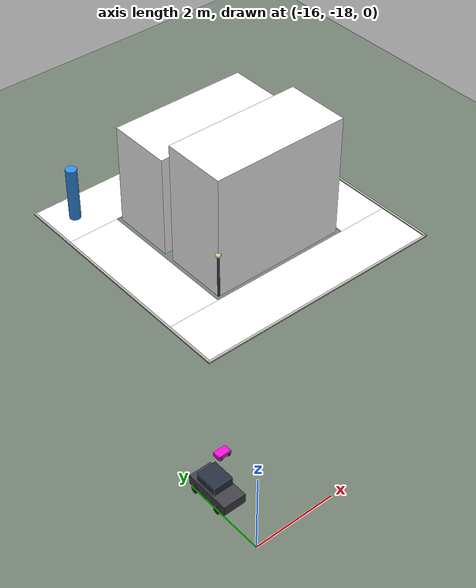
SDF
<sdf version="1.9">
 <world name="limo_city_blocks">
  <model name="ground_plane">
   <static>true</static>
   <link name="link">
    <collision name="collision">
     <geometry><plane><normal>0 0 1</normal><size>53 53</size></plane></geometry>
     <surface><friction><ode><mu>0.8</mu><mu2>0.8</mu2></ode></friction></surface>
    </collision>
    <visual name="visual">
     <geometry><plane><normal>0 0 1</normal><size>53 53</size></plane></geometry>
     <material><ambient>0.45 0.5 0.45 1</ambient><diffuse>0.45 0.5 0.45 1</diffuse></material>
    </visual>
   </link>
  </model>
  <model name="walk_s_0_0">
   <static>true</static>
   <pose>-10.000 -12.750 0.008 0 0 0.000</pose>
   <link name="link">
    <visual name="visual">
     <geometry><box><size>7.000 1.500 0.012</size></box></geometry>
     <material>
      <ambient>1 1 1 1</ambient>
      <diffuse>1 1 1 1</diffuse>
      <pbr>
       <metal>
        <albedo_map>model://city_textures/paving.png</albedo_map>
        <roughness>0.85</roughness>
        <metalness>0.0</metalness>
       </metal>
      </pbr>
     </material>
    </visual>
   </link>
  </model>
  <model name="walk_n_0_0">
   <static>true</static>
   <pose>-10.000 -7.250 0.008 0 0 0.000</pose>
   <link name="link">
    <visual name="visual">
     <geometry><box><size>7.000 1.500 0.012</size></box></geometry>
     <material>
      <ambient>1 1 1 1</ambient>
      <diffuse>1 1 1 1</diffuse>
      <pbr>
       <metal>
        <albedo_map>model://city_textures/paving.png</albedo_map>
        <roughness>0.85</roughness>
        <metalness>0.0</metalness>
       </metal>
      </pbr>
     </material>
    </visual>
   </link>
  </model>
  <model name="walk_w_0_0">
   <static>true</static>
   <pose>-12.750 -10.000 0.008 0 0 0.000</pose>
   <link name="link">
    <visual name="visual">
     <geometry><box><size>1.500 4.000 0.012</size></box></geometry>
     <material>
      <ambient>1 1 1 1</ambient>
      <diffuse>1 1 1 1</diffuse>
      <pbr>
       <metal>
        <albedo_map>model://city_textures/paving.png</albedo_map>
        <roughness>0.85</roughness>
        <metalness>0.0</metalness>
       </metal>
      </pbr>
     </material>
    </visual>
   </link>
  </model>
  <model name="walk_e_0_0">
   <static>true</static>
   <pose>-7.250 -10.000 0.008 0 0 0.000</pose>
   <link name="link">
    <visual name="visual">
     <geometry><box><size>1.500 4.000 0.012</size></box></geometry>
     <material>
      <ambient>1 1 1 1</ambient>
      <diffuse>1 1 1 1</diffuse>
      <pbr>
       <metal>
        <albedo_map>model://city_textures/paving.png</albedo_map>
        <roughness>0.85</roughness>
        <metalness>0.0</metalness>
       </metal>
      </pbr>
     </material>
    </visual>
   </link>
  </model>
  <model name="curb_s_0_0">
   <static>true</static>
   <pose>-10.000 -13.470 0.020 0 0 0.000</pose>
   <link name="link">
    <visual name="visual">
     <geometry><box><size>7.000 0.060 0.040</size></box></geometry>
     <material><ambient>0.72 0.72 0.7 1</ambient><diffuse>0.72 0.72 0.7 1</diffuse></material>
    </visual>
   </link>
  </model>
  <model name="curb_w_0_0">
   <static>true</static>
   <pose>-13.470 -10.000 0.020 0 0 0.000</pose>
   <link name="link">
    <visual name="visual">
     <geometry><box><size>0.060 7.000 0.040</size></box></geometry>
     <material><ambient>0.72 0.72 0.7 1</ambient><diffuse>0.72 0.72 0.7 1</diffuse></material>
    </visual>
   </link>
  </model>
  <model name="curb_e_0_0">
   <static>true</static>
   <pose>-6.530 -10.000 0.020 0 0 0.000</pose>
   <link name="link">
    <visual name="visual">
     <geometry><box><size>0.060 7.000 0.040</size></box></geometry>
     <material><ambient>0.72 0.72 0.7 1</ambient><diffuse>0.72 0.72 0.7 1</diffuse></material>
    </visual>
   </link>
  </model>
  <model name="lamp_0">
   <static>true</static>
   <pose>-11.880 -11.880 0 0 0 0</pose>
   <link name="link">
    <collision name="collision">
     <pose>0 0 0.6 0 0 0</pose>
     <geometry><cylinder><radius>0.03</radius><length>1.2</length></cylinder></geometry>
    </collision>
    <visual name="pole">
     <pose>0 0 0.6 0 0 0</pose>
     <geometry><cylinder><radius>0.03</radius><length>1.2</length></cylinder></geometry>
     <material><ambient>0.2 0.2 0.22 1</ambient><diffuse>0.25 0.25 0.28 1</diffuse></material>
    </visual>
    <visual name="head">
     <pose>0 0 1.25 0 0 0</pose>
     <geometry><sphere><radius>0.07</radius></sphere></geometry>
     <material>
      <ambient>0.9 0.85 0.6 1</ambient>
      <diffuse>0.95 0.9 0.65 1</diffuse>
      <emissive>0.5 0.45 0.25 1</emissive>
     </material>
    </visual>
   </link>
  </model>
  <model name="lamp_1">
   <static>true</static>
   <pose>-8.120 -8.120 0 0 0 0</pose>
   <link name="link">
    <collision name="collision">
     <pose>0 0 0.6 0 0 0</pose>
     <geometry><cylinder><radius>0.03</radius><length>1.2</length></cylinder></geometry>
    </collision>
    <visual name="pole">
     <pose>0 0 0.6 0 0 0</pose>
     <geometry><cylinder><radius>0.03</radius><length>1.2</length></cylinder></geometry>
     <material><ambient>0.2 0.2 0.22 1</ambient><diffuse>0.25 0.25 0.28 1</diffuse></material>
    </visual>
    <visual name="head">
     <pose>0 0 1.25 0 0 0</pose>
     <geometry><sphere><radius>0.07</radius></sphere></geometry>
     <material>
      <ambient>0.9 0.85 0.6 1</ambient>
      <diffuse>0.95 0.9 0.65 1</diffuse>
      <emissive>0.5 0.45 0.25 1</emissive>
     </material>
    </visual>
   </link>
  </model>
  <model name="building_0">
   <static>true</static>
   <pose>-10.000 -11.025 1.698 0 0 0.000</pose>
   <link name="link">
    <collision name="collision"><geometry><box><size>3.800 1.750 3.396</size></box></geometry></collision>
    <visual name="visual">
     <geometry><box><size>3.800 1.750 3.396</size></box></geometry>
     <material>
      <ambient>1 1 1 1</ambient>
      <diffuse>1 1 1 1</diffuse>
      <pbr>
       <metal>
        <albedo_map>model://city_textures/facade_3.png</albedo_map>
        <roughness>0.85</roughness>
        <metalness>0.0</metalness>
       </metal>
      </pbr>
     </material>
    </visual>
   </link>
  </model>
  <model name="building_1">
   <static>true</static>
   <pose>-10.000 -8.975 1.401 0 0 0.000</pose>
   <link name="link">
    <collision name="collision"><geometry><box><size>3.800 1.750 2.802</size></box></geometry></collision>
    <visual name="visual">
     <geometry><box><size>3.800 1.750 2.802</size></box></geometry>
     <material>
      <ambient>1 1 1 1</ambient>
      <diffuse>1 1 1 1</diffuse>
      <pbr>
       <metal>
        <albedo_map>model://city_textures/facade_0.png</albedo_map>
        <roughness>0.85</roughness>
        <metalness>0.0</metalness>
       </metal>
      </pbr>
     </material>
    </visual>
   </link>
  </model>
  <model name="ped_1_cross">
   <pose>-12.750 -7.250 0 0 0 0</pose>
   <link name="body">
    <kinematic>true</kinematic>
    <collision name="collision">
     <pose>0 0 0.75 0 0 0</pose>
     <geometry><cylinder><radius>0.15</radius><length>1.5</length></cylinder></geometry>
    </collision>
    <visual name="visual">
     <pose>0 0 0.75 0 0 0</pose>
     <geometry><cylinder><radius>0.15</radius><length>1.5</length></cylinder></geometry>
     <material><ambient>0.2 0.55 0.9 1</ambient><diffuse>0.2 0.55 0.9 1</diffuse></material>
    </visual>
   </link>
   <plugin filename="gz-sim-velocity-control-system" name="gz::sim::systems::VelocityControl"/>
   <plugin filename="gz-sim-pose-publisher-system" name="gz::sim::systems::PosePublisher">
    <publish_model_pose>true</publish_model_pose>
    <publish_link_pose>false</publish_link_pose>
    <publish_collision_pose>false</publish_collision_pose>
    <publish_visual_pose>false</publish_visual_pose>
    <publish_sensor_pose>false</publish_sensor_pose>
    <use_pose_vector_msg>false</use_pose_vector_msg>
    <update_frequency>10</update_frequency>
   </plugin>
  </model>
  <model name="vehicle_6_car">
   <static>false</static>
   <pose>-15.750 -16.500 0 0 0 -1.571</pose>
   <link name="body">
    <kinematic>true</kinematic>
    <collision name="collision">
     <pose>0 0 0.2 0 0 0</pose>
     <geometry><box><size>1.10 0.55 0.40</size></box></geometry>
    </collision>
    <visual name="body_v">
     <pose>0 0 0.20 0 0 0</pose>
     <geometry><box><size>1.10 0.55 0.24</size></box></geometry>
     <material>
      <ambient>0.25 0.25 0.28 1</ambient>
      <diffuse>0.25 0.25 0.28 1</diffuse>
      <specular>0.4 0.4 0.4 1</specular>
     </material>
    </visual>
    <visual name="cabin">
     <pose>-0.08 0 0.42 0 0 0</pose>
     <geometry><box><size>0.55 0.48 0.22</size></box></geometry>
     <material>
      <ambient>0.12 0.15 0.2 1</ambient>
      <diffuse>0.15 0.18 0.25 1</diffuse>
      <specular>0.5 0.5 0.55 1</specular>
     </material>
    </visual>
    <visual name="wheel_0">
     <pose>0.35 0.29 0.09 1.5707 0 0</pose>
     <geometry><cylinder><radius>0.09</radius><length>0.06</length></cylinder></geometry>
     <material><ambient>0.08 0.08 0.08 1</ambient><diffuse>0.1 0.1 0.1 1</diffuse></material>
    </visual>
    <visual name="wheel_1">
     <pose>0.35 -0.29 0.09 1.5707 0 0</pose>
     <geometry><cylinder><radius>0.09</radius><length>0.06</length></cylinder></geometry>
     <material><ambient>0.08 0.08 0.08 1</ambient><diffuse>0.1 0.1 0.1 1</diffuse></material>
    </visual>
    <visual name="wheel_2">
     <pose>-0.35 0.29 0.09 1.5707 0 0</pose>
     <geometry><cylinder><radius>0.09</radius><length>0.06</length></cylinder></geometry>
     <material><ambient>0.08 0.08 0.08 1</ambient><diffuse>0.1 0.1 0.1 1</diffuse></material>
    </visual>
    <visual name="wheel_3">
     <pose>-0.35 -0.29 0.09 1.5707 0 0</pose>
     <geometry><cylinder><radius>0.09</radius><length>0.06</length></cylinder></geometry>
     <material><ambient>0.08 0.08 0.08 1</ambient><diffuse>0.1 0.1 0.1 1</diffuse></material>
    </visual>
   </link>
   <plugin filename="gz-sim-velocity-control-system" name="gz::sim::systems::VelocityControl"/>
   <plugin filename="gz-sim-pose-publisher-system" name="gz::sim::systems::PosePublisher">
    <publish_model_pose>true</publish_model_pose>
    <publish_link_pose>false</publish_link_pose>
    <publish_collision_pose>false</publish_collision_pose>
    <publish_visual_pose>false</publish_visual_pose>
    <publish_sensor_pose>false</publish_sensor_pose>
    <use_pose_vector_msg>false</use_pose_vector_msg>
    <update_frequency>15</update_frequency>
   </plugin>
  </model>
  <include>
   <uri>model://limo_pro</uri>
   <name>limo</name>
   <pose>-15.000 -15.750 0.075 0 0 0</pose>
   <plugin filename="gz-sim-pose-publisher-system" name="gz::sim::systems::PosePublisher">
    <publish_model_pose>true</publish_model_pose>
    <publish_link_pose>false</publish_link_pose>
    <publish_collision_pose>false</publish_collision_pose>
    <publish_visual_pose>false</publish_visual_pose>
    <publish_sensor_pose>false</publish_sensor_pose>
    <use_pose_vector_msg>false</use_pose_vector_msg>
    <update_frequency>20</update_frequency>
   </plugin>
  </include>
 </world>
</sdf>
